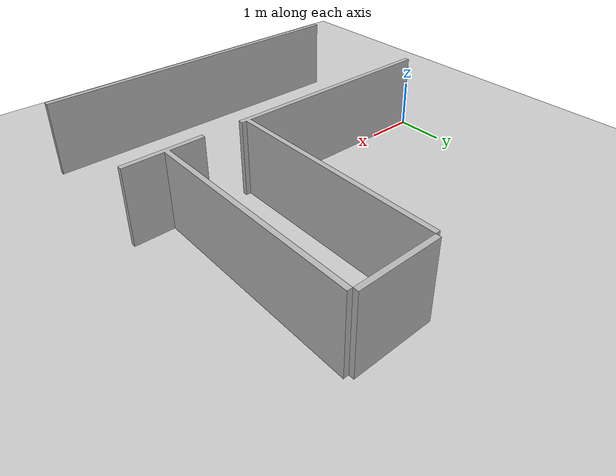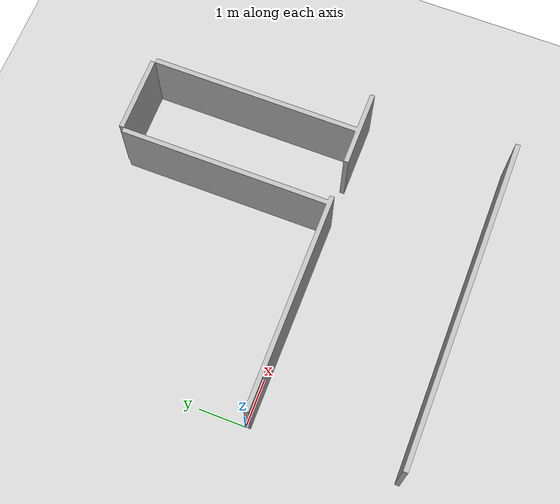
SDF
<sdf version="1.7">
 <world name="default">
  <light name="sun" type="directional">
   <pose>0 0 10 0 -0 0</pose>
   <diffuse>0.8 0.8 0.8 1</diffuse>
   <specular>0.2 0.2 0.2 1</specular>
   <attenuation>
    <range>1000</range>
    <constant>0.9</constant>
    <linear>0.01</linear>
    <quadratic>0.001</quadratic>
   </attenuation>
   <direction>-0.5 0.1 -0.9</direction>
   <spot><inner_angle>0</inner_angle><outer_angle>0</outer_angle><falloff>0</falloff></spot>
  </light>
  <model name="ground_plane">
   <static>1</static>
   <link name="link">
    <collision name="collision">
     <geometry><plane><normal>0 0 1</normal><size>100 100</size></plane></geometry>
     <surface><friction><ode><mu>100</mu><mu2>50</mu2></ode></friction></surface>
    </collision>
    <visual name="visual">
     <cast_shadows>0</cast_shadows>
     <geometry><plane><normal>0 0 1</normal><size>100 100</size></plane></geometry>
     <material>
      <script><uri>file://media/materials/scripts/gazebo.material</uri><name>Gazebo/Grey</name></script>
     </material>
    </visual>
   </link>
  </model>
  <gravity>0 0 -9.8</gravity>
  <magnetic_field>6e-06 2.3e-05 -4.2e-05</magnetic_field>
  <atmosphere type="adiabatic"/>
  <physics type="ode">
   <max_step_size>0.001</max_step_size>
   <real_time_factor>1</real_time_factor>
   <real_time_update_rate>1000</real_time_update_rate>
  </physics>
  <scene><ambient>0.4 0.4 0.4 1</ambient><background>0.7 0.7 0.7 1</background><shadows>1</shadows></scene>
  <audio><device>default</device></audio>
  <spherical_coordinates>
   <surface_model>EARTH_WGS84</surface_model>
   <latitude_deg>0</latitude_deg>
   <longitude_deg>0</longitude_deg>
   <elevation>0</elevation>
   <heading_deg>0</heading_deg>
  </spherical_coordinates>
  <model name="workshop_map_2">
   <link name="map_link">
    <inertial>
     <pose>4.24237 0.174576 0.8 0 -0 0</pose>
     <mass>3776</mass>
     <inertia>
      <ixx>5851.09</ixx>
      <ixy>-1719.52</ixy>
      <ixz>1.41477e-12</ixz>
      <iyy>8450.84</iyy>
      <iyz>7.7201e-13</iyz>
      <izz>12690.8</izz>
     </inertia>
    </inertial>
    <collision name="map_link_collision">
     <geometry>
      <mesh>
       <scale>1 1 1</scale>
       <uri>file:////home/fang/coop_ws/install/my_robot_description/share/my_robot_description/meshes/map_2/map_link.STL</uri>
      </mesh>
     </geometry>
    </collision>
    <visual name="map_link_visual">
     <geometry>
      <mesh>
       <scale>1 1 1</scale>
       <uri>file:////home/fang/coop_ws/install/my_robot_description/share/my_robot_description/meshes/map_2/map_link.STL</uri>
      </mesh>
     </geometry>
    </visual>
   </link>
   <pose>-0.00012 0.000322 -0 1e-06 -0 -2.6e-05</pose>
  </model>
 </world>
</sdf>
